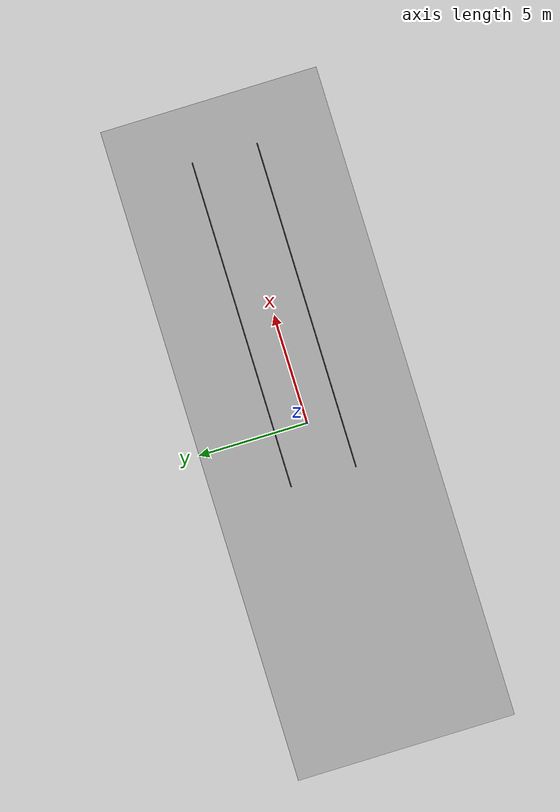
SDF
<?xml version="1.0" ?>
<sdf version="1.6">
  <world name="simple_track">

    <physics type="ode">
      <max_step_size>0.001</max_step_size>
      <real_time_factor>1.0</real_time_factor>
      <real_time_update_rate>1000</real_time_update_rate>
    </physics>

    <scene>
      <shadows>false</shadows>
      <ambient>0.4 0.4 0.4 1</ambient>
      <background>0.7 0.7 0.7 1</background>
    </scene>

    <include><uri>model://sun</uri></include>
    <include><uri>model://ground_plane</uri></include>

    <model name="track_ground">
      <static>true</static>
      <pose>0 0 0.001 0 0 0</pose>
      <link name="link">
        <collision name="collision">
          <geometry><box><size>30.0 10.0 0.001</size></box></geometry>
        </collision>
        <visual name="visual">
          <geometry><box><size>30.0 10.0 0.001</size></box></geometry>
          <material>
            <ambient>0.55 0.55 0.55 1</ambient>
            <diffuse>0.65 0.65 0.65 1</diffuse>
          </material>
        </visual>
      </link>
    </model>

    <model name="guide_wall_left">
      <static>true</static>
      <pose>5.0 1.5 0.125 0 0 0</pose>
      <link name="link">
        <collision name="collision">
          <geometry><box><size>15.0 0.05 0.25</size></box></geometry>
        </collision>
        <visual name="visual">
          <geometry><box><size>15.0 0.05 0.25</size></box></geometry>
          <material><ambient>0.1 0.1 0.1 1</ambient><diffuse>0.1 0.1 0.1 1</diffuse></material>
        </visual>
      </link>
    </model>

    <model name="guide_wall_right">
      <static>true</static>
      <pose>5.0 -1.5 0.125 0 0 0</pose>
      <link name="link">
        <collision name="collision">
          <geometry><box><size>15.0 0.05 0.25</size></box></geometry>
        </collision>
        <visual name="visual">
          <geometry><box><size>15.0 0.05 0.25</size></box></geometry>
          <material><ambient>0.1 0.1 0.1 1</ambient><diffuse>0.1 0.1 0.1 1</diffuse></material>
        </visual>
      </link>
    </model>

    <model name="yellow_ball">
      <static>true</static>
      <pose>5.0 0.0 0.25 0 0 0</pose>
      <link name="link">
        <visual name="visual">
          <geometry>
            <sphere><radius>0.0508</radius></sphere>
          </geometry>
          <material>
            <ambient>0.90 0.78 0.08 1</ambient>
            <diffuse>0.90 0.78 0.08 1</diffuse>
            <specular>0.1 0.1 0.0 1</specular>
          </material>
        </visual>
        <collision name="collision">
          <geometry>
            <sphere><radius>0.0508</radius></sphere>
          </geometry>
        </collision>
      </link>
    </model>

  </world>
</sdf>
